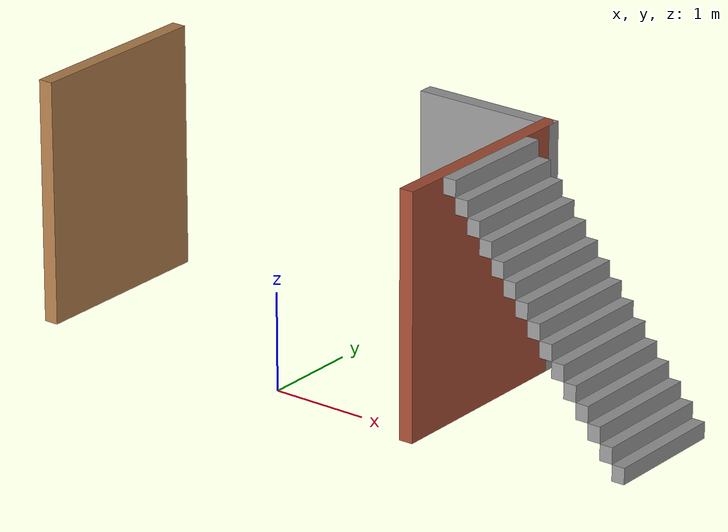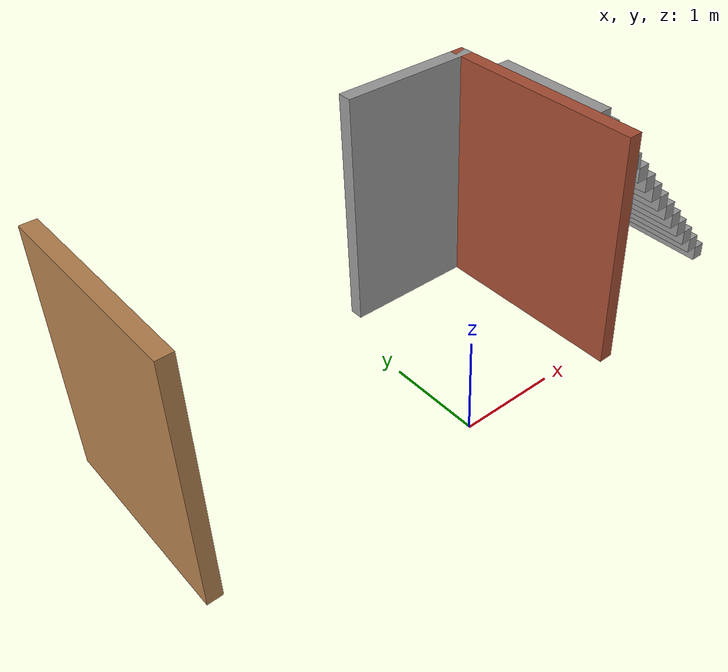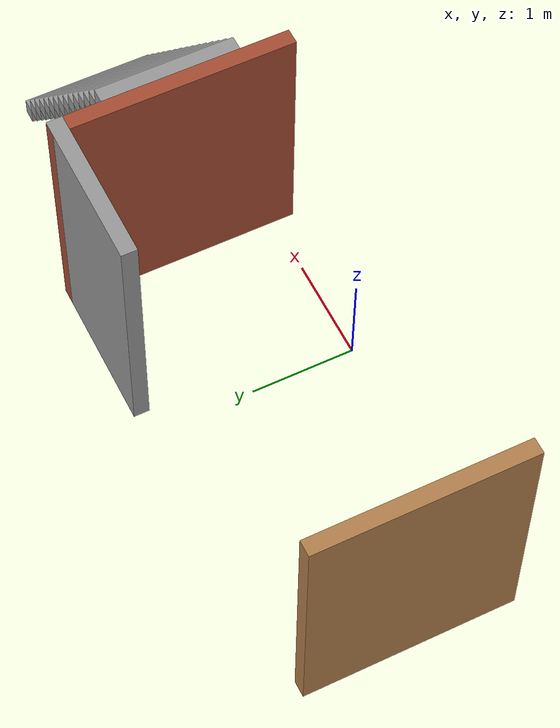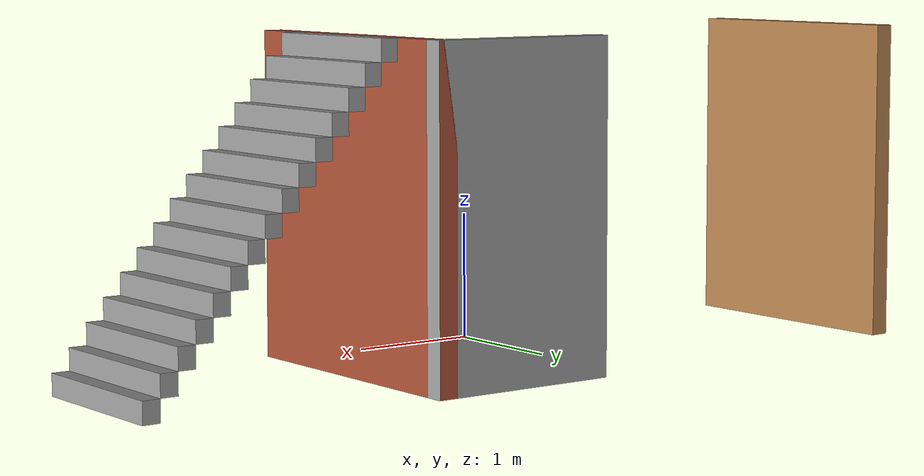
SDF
<?xml version='1.0'?>
<sdf version='1.7'>
  <model name='trialworld'>
    <pose>0.485 0.93 0 0 -0 0</pose>
    <link name='Stairs_0'>
      <visual name='Stairs_0_Visual_0'>
        <pose>3.24133 -0.02 0.083333 0 -0 -1.5708</pose>
        <geometry>
          <box>
            <size>1.29 0.137333 0.166667</size>
          </box>
        </geometry>
        <material>
          <script>
            <uri>file://media/materials/scripts/gazebo.material</uri>
            <name>Gazebo/Grey</name>
          </script>
          <ambient>1 1 1 1</ambient>
        </material>
        <meta>
          <layer>0</layer>
        </meta>
      </visual>
      <collision name='Stairs_0_Collision_0'>
        <geometry>
          <box>
            <size>1.29 0.137333 0.166667</size>
          </box>
        </geometry>
        <pose>3.24133 -0.02 0.083333 0 -0 -1.5708</pose>
      </collision>
      <visual name='Stairs_0_Visual_1'>
        <pose>3.104 -0.02 0.25 0 -0 -1.5708</pose>
        <geometry>
          <box>
            <size>1.29 0.137333 0.166667</size>
          </box>
        </geometry>
        <material>
          <script>
            <uri>file://media/materials/scripts/gazebo.material</uri>
            <name>Gazebo/Grey</name>
          </script>
          <ambient>1 1 1 1</ambient>
        </material>
        <meta>
          <layer>0</layer>
        </meta>
      </visual>
      <collision name='Stairs_0_Collision_1'>
        <geometry>
          <box>
            <size>1.29 0.137333 0.166667</size>
          </box>
        </geometry>
        <pose>3.104 -0.02 0.25 0 -0 -1.5708</pose>
      </collision>
      <visual name='Stairs_0_Visual_2'>
        <pose>2.96667 -0.02 0.416667 0 -0 -1.5708</pose>
        <geometry>
          <box>
            <size>1.29 0.137333 0.166667</size>
          </box>
        </geometry>
        <material>
          <script>
            <uri>file://media/materials/scripts/gazebo.material</uri>
            <name>Gazebo/Grey</name>
          </script>
          <ambient>1 1 1 1</ambient>
        </material>
        <meta>
          <layer>0</layer>
        </meta>
      </visual>
      <collision name='Stairs_0_Collision_2'>
        <geometry>
          <box>
            <size>1.29 0.137333 0.166667</size>
          </box>
        </geometry>
        <pose>2.96667 -0.02 0.416667 0 -0 -1.5708</pose>
      </collision>
      <visual name='Stairs_0_Visual_3'>
        <pose>2.82933 -0.02 0.583333 0 -0 -1.5708</pose>
        <geometry>
          <box>
            <size>1.29 0.137333 0.166667</size>
          </box>
        </geometry>
        <material>
          <script>
            <uri>file://media/materials/scripts/gazebo.material</uri>
            <name>Gazebo/Grey</name>
          </script>
          <ambient>1 1 1 1</ambient>
        </material>
        <meta>
          <layer>0</layer>
        </meta>
      </visual>
      <collision name='Stairs_0_Collision_3'>
        <geometry>
          <box>
            <size>1.29 0.137333 0.166667</size>
          </box>
        </geometry>
        <pose>2.82933 -0.02 0.583333 0 -0 -1.5708</pose>
      </collision>
      <visual name='Stairs_0_Visual_4'>
        <pose>2.692 -0.02 0.75 0 -0 -1.5708</pose>
        <geometry>
          <box>
            <size>1.29 0.137333 0.166667</size>
          </box>
        </geometry>
        <material>
          <script>
            <uri>file://media/materials/scripts/gazebo.material</uri>
            <name>Gazebo/Grey</name>
          </script>
          <ambient>1 1 1 1</ambient>
        </material>
        <meta>
          <layer>0</layer>
        </meta>
      </visual>
      <collision name='Stairs_0_Collision_4'>
        <geometry>
          <box>
            <size>1.29 0.137333 0.166667</size>
          </box>
        </geometry>
        <pose>2.692 -0.02 0.75 0 -0 -1.5708</pose>
      </collision>
      <visual name='Stairs_0_Visual_5'>
        <pose>2.55467 -0.02 0.916667 0 -0 -1.5708</pose>
        <geometry>
          <box>
            <size>1.29 0.137333 0.166667</size>
          </box>
        </geometry>
        <material>
          <script>
            <uri>file://media/materials/scripts/gazebo.material</uri>
            <name>Gazebo/Grey</name>
          </script>
          <ambient>1 1 1 1</ambient>
        </material>
        <meta>
          <layer>0</layer>
        </meta>
      </visual>
      <collision name='Stairs_0_Collision_5'>
        <geometry>
          <box>
            <size>1.29 0.137333 0.166667</size>
          </box>
        </geometry>
        <pose>2.55467 -0.02 0.916667 0 -0 -1.5708</pose>
      </collision>
      <visual name='Stairs_0_Visual_6'>
        <pose>2.41733 -0.02 1.08333 0 -0 -1.5708</pose>
        <geometry>
          <box>
            <size>1.29 0.137333 0.166667</size>
          </box>
        </geometry>
        <material>
          <script>
            <uri>file://media/materials/scripts/gazebo.material</uri>
            <name>Gazebo/Grey</name>
          </script>
          <ambient>1 1 1 1</ambient>
        </material>
        <meta>
          <layer>0</layer>
        </meta>
      </visual>
      <collision name='Stairs_0_Collision_6'>
        <geometry>
          <box>
            <size>1.29 0.137333 0.166667</size>
          </box>
        </geometry>
        <pose>2.41733 -0.02 1.08333 0 -0 -1.5708</pose>
      </collision>
      <visual name='Stairs_0_Visual_7'>
        <pose>2.28 -0.02 1.25 0 -0 -1.5708</pose>
        <geometry>
          <box>
            <size>1.29 0.137333 0.166667</size>
          </box>
        </geometry>
        <material>
          <script>
            <uri>file://media/materials/scripts/gazebo.material</uri>
            <name>Gazebo/Grey</name>
          </script>
          <ambient>1 1 1 1</ambient>
        </material>
        <meta>
          <layer>0</layer>
        </meta>
      </visual>
      <collision name='Stairs_0_Collision_7'>
        <geometry>
          <box>
            <size>1.29 0.137333 0.166667</size>
          </box>
        </geometry>
        <pose>2.28 -0.02 1.25 0 -0 -1.5708</pose>
      </collision>
      <visual name='Stairs_0_Visual_8'>
        <pose>2.14267 -0.02 1.41667 0 -0 -1.5708</pose>
        <geometry>
          <box>
            <size>1.29 0.137333 0.166667</size>
          </box>
        </geometry>
        <material>
          <script>
            <uri>file://media/materials/scripts/gazebo.material</uri>
            <name>Gazebo/Grey</name>
          </script>
          <ambient>1 1 1 1</ambient>
        </material>
        <meta>
          <layer>0</layer>
        </meta>
      </visual>
      <collision name='Stairs_0_Collision_8'>
        <geometry>
          <box>
            <size>1.29 0.137333 0.166667</size>
          </box>
        </geometry>
        <pose>2.14267 -0.02 1.41667 0 -0 -1.5708</pose>
      </collision>
      <visual name='Stairs_0_Visual_9'>
        <pose>2.00533 -0.02 1.58333 0 -0 -1.5708</pose>
        <geometry>
          <box>
            <size>1.29 0.137333 0.166667</size>
          </box>
        </geometry>
        <material>
          <script>
            <uri>file://media/materials/scripts/gazebo.material</uri>
            <name>Gazebo/Grey</name>
          </script>
          <ambient>1 1 1 1</ambient>
        </material>
        <meta>
          <layer>0</layer>
        </meta>
      </visual>
      <collision name='Stairs_0_Collision_9'>
        <geometry>
          <box>
            <size>1.29 0.137333 0.166667</size>
          </box>
        </geometry>
        <pose>2.00533 -0.02 1.58333 0 -0 -1.5708</pose>
      </collision>
      <visual name='Stairs_0_Visual_10'>
        <pose>1.868 -0.02 1.75 0 -0 -1.5708</pose>
        <geometry>
          <box>
            <size>1.29 0.137333 0.166667</size>
          </box>
        </geometry>
        <material>
          <script>
            <uri>file://media/materials/scripts/gazebo.material</uri>
            <name>Gazebo/Grey</name>
          </script>
          <ambient>1 1 1 1</ambient>
        </material>
        <meta>
          <layer>0</layer>
        </meta>
      </visual>
      <collision name='Stairs_0_Collision_10'>
        <geometry>
          <box>
            <size>1.29 0.137333 0.166667</size>
          </box>
        </geometry>
        <pose>1.868 -0.02 1.75 0 -0 -1.5708</pose>
      </collision>
      <visual name='Stairs_0_Visual_11'>
        <pose>1.73067 -0.02 1.91667 0 -0 -1.5708</pose>
        <geometry>
          <box>
            <size>1.29 0.137333 0.166667</size>
          </box>
        </geometry>
        <material>
          <script>
            <uri>file://media/materials/scripts/gazebo.material</uri>
            <name>Gazebo/Grey</name>
          </script>
          <ambient>1 1 1 1</ambient>
        </material>
        <meta>
          <layer>0</layer>
        </meta>
      </visual>
      <collision name='Stairs_0_Collision_11'>
        <geometry>
          <box>
            <size>1.29 0.137333 0.166667</size>
          </box>
        </geometry>
        <pose>1.73067 -0.02 1.91667 0 -0 -1.5708</pose>
      </collision>
      <visual name='Stairs_0_Visual_12'>
        <pose>1.59333 -0.02 2.08333 0 -0 -1.5708</pose>
        <geometry>
          <box>
            <size>1.29 0.137333 0.166667</size>
          </box>
        </geometry>
        <material>
          <script>
            <uri>file://media/materials/scripts/gazebo.material</uri>
            <name>Gazebo/Grey</name>
          </script>
          <ambient>1 1 1 1</ambient>
        </material>
        <meta>
          <layer>0</layer>
        </meta>
      </visual>
      <collision name='Stairs_0_Collision_12'>
        <geometry>
          <box>
            <size>1.29 0.137333 0.166667</size>
          </box>
        </geometry>
        <pose>1.59333 -0.02 2.08333 0 -0 -1.5708</pose>
      </collision>
      <visual name='Stairs_0_Visual_13'>
        <pose>1.456 -0.02 2.25 0 -0 -1.5708</pose>
        <geometry>
          <box>
            <size>1.29 0.137333 0.166667</size>
          </box>
        </geometry>
        <material>
          <script>
            <uri>file://media/materials/scripts/gazebo.material</uri>
            <name>Gazebo/Grey</name>
          </script>
          <ambient>1 1 1 1</ambient>
        </material>
        <meta>
          <layer>0</layer>
        </meta>
      </visual>
      <collision name='Stairs_0_Collision_13'>
        <geometry>
          <box>
            <size>1.29 0.137333 0.166667</size>
          </box>
        </geometry>
        <pose>1.456 -0.02 2.25 0 -0 -1.5708</pose>
      </collision>
      <visual name='Stairs_0_Visual_14'>
        <pose>1.31867 -0.02 2.41667 0 -0 -1.5708</pose>
        <geometry>
          <box>
            <size>1.29 0.137333 0.166667</size>
          </box>
        </geometry>
        <material>
          <script>
            <uri>file://media/materials/scripts/gazebo.material</uri>
            <name>Gazebo/Grey</name>
          </script>
          <ambient>1 1 1 1</ambient>
        </material>
        <meta>
          <layer>0</layer>
        </meta>
      </visual>
      <collision name='Stairs_0_Collision_14'>
        <geometry>
          <box>
            <size>1.29 0.137333 0.166667</size>
          </box>
        </geometry>
        <pose>1.31867 -0.02 2.41667 0 -0 -1.5708</pose>
      </collision>
    </link>
    <link name='Wall_3'>
      <collision name='Wall_3_Collision'>
        <geometry>
          <box>
            <size>2 0.15 2.5</size>
          </box>
        </geometry>
        <pose>0 0 1.25 0 -0 0</pose>
      </collision>
      <visual name='Wall_3_Visual'>
        <pose>0 0 1.25 0 -0 0</pose>
        <geometry>
          <box>
            <size>2 0.15 2.5</size>
          </box>
        </geometry>
        <material>
          <script>
            <uri>file://media/materials/scripts/gazebo.material</uri>
            <name>Gazebo/Wood</name>
          </script>
          <ambient>1 1 1 1</ambient>
        </material>
        <meta>
          <layer>0</layer>
        </meta>
      </visual>
      <pose>-3.235 -0.005 0 0 -0 -1.5708</pose>
    </link>
    <link name='Wall_6'>
      <collision name='Wall_6_Collision'>
        <geometry>
          <box>
            <size>2.25 0.15 2.5</size>
          </box>
        </geometry>
        <pose>0 0 1.25 0 -0 0</pose>
      </collision>
      <visual name='Wall_6_Visual'>
        <pose>0 0 1.25 0 -0 0</pose>
        <geometry>
          <box>
            <size>2.25 0.15 2.5</size>
          </box>
        </geometry>
        <material>
          <script>
            <uri>file://media/materials/scripts/gazebo.material</uri>
            <name>Gazebo/Bricks</name>
          </script>
          <ambient>1 1 1 1</ambient>
        </material>
        <meta>
          <layer>0</layer>
        </meta>
      </visual>
      <pose>1.175 0 0 0 -0 1.5708</pose>
    </link>
    <link name='Wall_7'>
      <collision name='Wall_7_Collision'>
        <geometry>
          <box>
            <size>1.5 0.15 2.5</size>
          </box>
        </geometry>
        <pose>0 0 1.25 0 -0 0</pose>
      </collision>
      <visual name='Wall_7_Visual'>
        <pose>0 0 1.25 0 -0 0</pose>
        <geometry>
          <box>
            <size>1.5 0.15 2.5</size>
          </box>
        </geometry>
        <material>
          <script>
            <uri>file://media/materials/scripts/gazebo.material</uri>
            <name>Gazebo/Grey</name>
          </script>
          <ambient>1 1 1 1</ambient>
        </material>
        <meta>
          <layer>0</layer>
        </meta>
      </visual>
      <pose>0.5 1.05 0 0 -0 3.14159</pose>
    </link>
    <static>1</static>
  </model>
</sdf>
